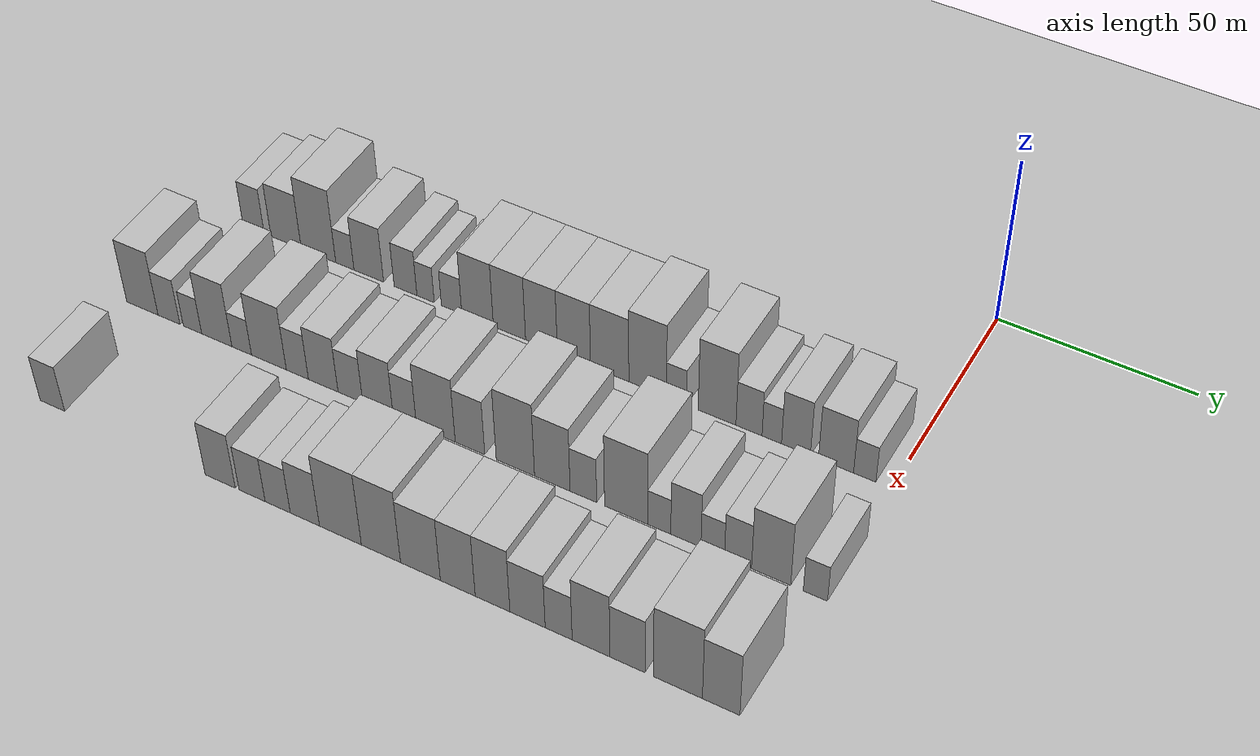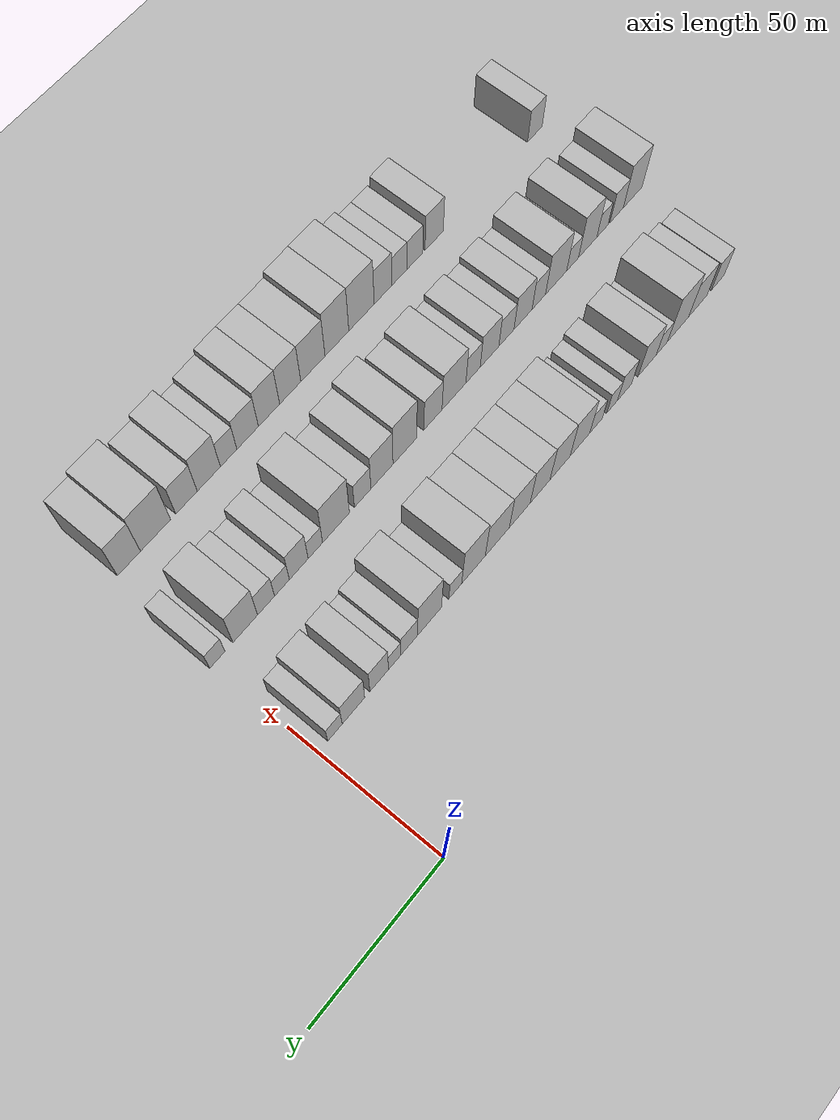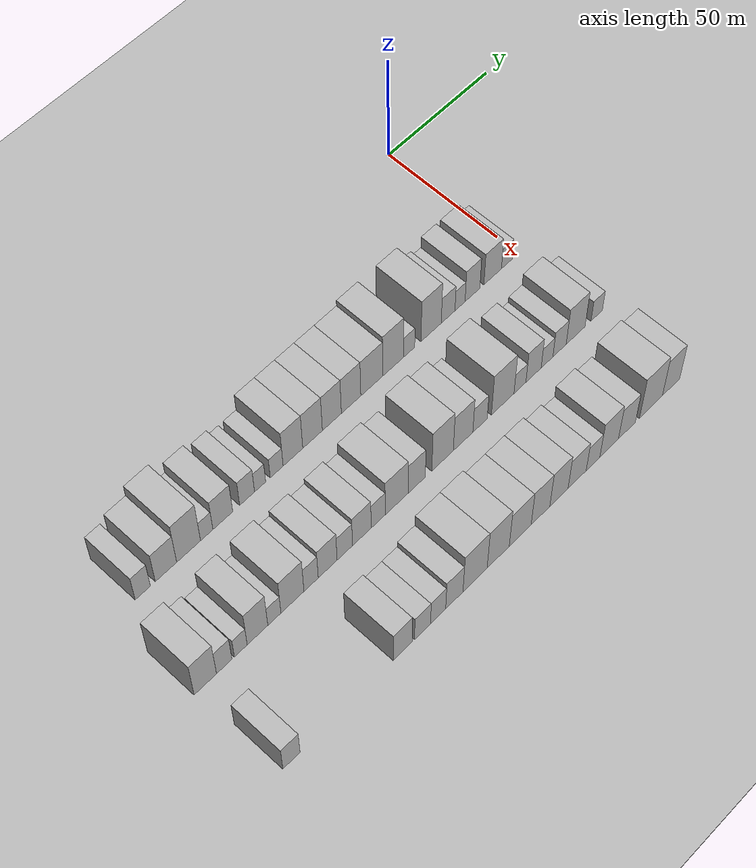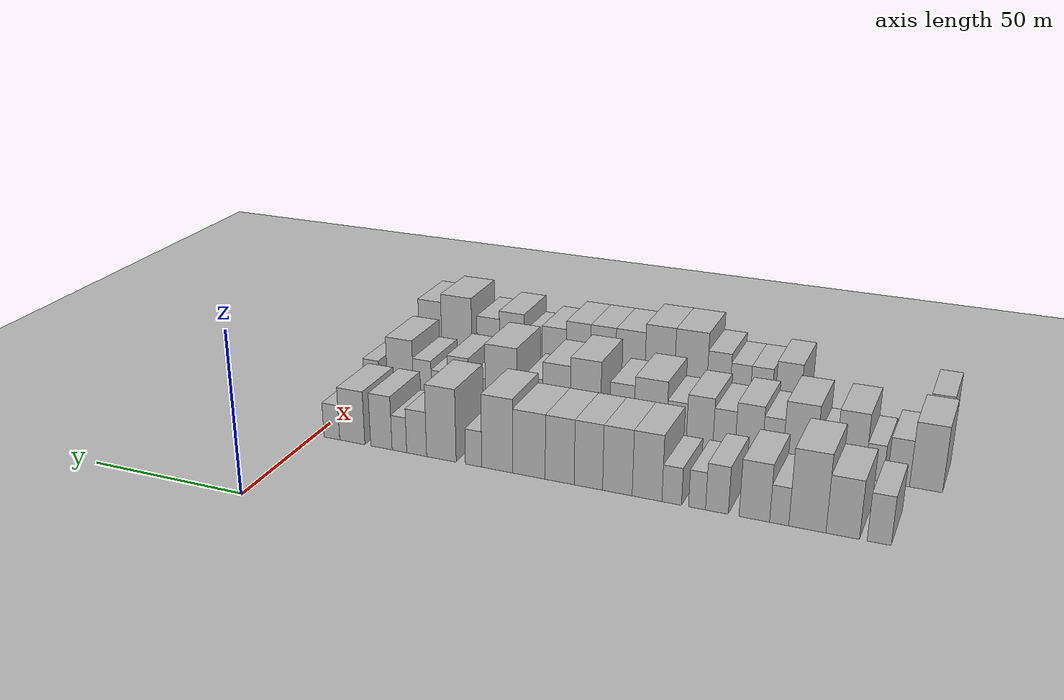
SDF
<sdf version="1.6">
 <world name="default">
  <include><name>ground_plane_1</name><uri>model://HANNAS_ground_plane</uri></include>
  <include>
   <name>ground_plane_2</name>
   <uri>model://HANNAS_ground_plane</uri>
   <pose>100 0 0  0 0 0</pose>
  </include>
  <model name="building_23">
   <static>1</static>
   <pose>50.0000 -171.4032 0 0.000000 0.000000 0.000000</pose>
   <link name="link">
    <pose>0 0 7.50 0 0 0</pose>
    <collision name="collision"><geometry><box><size>20.0000 6.2841 15.0000</size></box></geometry></collision>
    <visual name="visual">
     <cast_shadows>0</cast_shadows>
     <geometry><box><size>20.0000 6.2841 15.0000</size></box></geometry>
     <material>
      <script>
       <uri>model://HANNAS_wall/materials/scripts</uri>
       <uri>model://HANNAS_wall/materials/textures</uri>
       <name>vrc/HANNAS_wall</name>
      </script>
     </material>
    </visual>
   </link>
  </model>
  <model name="building_24">
   <static>1</static>
   <pose>50.0000 -161.8031 0 0.000000 0.000000 0.000000</pose>
   <link name="link">
    <pose>0 0 9.00 0 0 0</pose>
    <collision name="collision"><geometry><box><size>20.0000 8.9161 18.0000</size></box></geometry></collision>
    <visual name="visual">
     <cast_shadows>0</cast_shadows>
     <geometry><box><size>20.0000 8.9161 18.0000</size></box></geometry>
     <material>
      <script>
       <uri>model://HANNAS_wall/materials/scripts</uri>
       <uri>model://HANNAS_wall/materials/textures</uri>
       <name>vrc/HANNAS_wall</name>
      </script>
     </material>
    </visual>
   </link>
  </model>
  <model name="building_25">
   <static>1</static>
   <pose>50.0000 -152.3166 0 0.000000 0.000000 0.000000</pose>
   <link name="link">
    <pose>0 0 12.00 0 0 0</pose>
    <collision name="collision"><geometry><box><size>20.0000 10.0570 24.0000</size></box></geometry></collision>
    <visual name="visual">
     <cast_shadows>0</cast_shadows>
     <geometry><box><size>20.0000 10.0570 24.0000</size></box></geometry>
     <material>
      <script>
       <uri>model://HANNAS_wall/materials/scripts</uri>
       <uri>model://HANNAS_wall/materials/textures</uri>
       <name>vrc/HANNAS_wall</name>
      </script>
     </material>
    </visual>
   </link>
  </model>
  <model name="building_26">
   <static>1</static>
   <pose>50.0000 -144.6645 0 0.000000 0.000000 0.000000</pose>
   <link name="link">
    <pose>0 0 6.00 0 0 0</pose>
    <collision name="collision"><geometry><box><size>20.0000 5.2472 12.0000</size></box></geometry></collision>
    <visual name="visual">
     <cast_shadows>0</cast_shadows>
     <geometry><box><size>20.0000 5.2472 12.0000</size></box></geometry>
     <material>
      <script>
       <uri>model://HANNAS_wall/materials/scripts</uri>
       <uri>model://HANNAS_wall/materials/textures</uri>
       <name>vrc/HANNAS_wall</name>
      </script>
     </material>
    </visual>
   </link>
  </model>
  <model name="building_27">
   <static>1</static>
   <pose>50.0000 -137.7980 0 0.000000 0.000000 0.000000</pose>
   <link name="link">
    <pose>0 0 9.00 0 0 0</pose>
    <collision name="collision"><geometry><box><size>20.0000 8.4859 18.0000</size></box></geometry></collision>
    <visual name="visual">
     <cast_shadows>0</cast_shadows>
     <geometry><box><size>20.0000 8.4859 18.0000</size></box></geometry>
     <material>
      <script>
       <uri>model://HANNAS_wall/materials/scripts</uri>
       <uri>model://HANNAS_wall/materials/textures</uri>
       <name>vrc/HANNAS_wall</name>
      </script>
     </material>
    </visual>
   </link>
  </model>
  <model name="building_28">
   <static>1</static>
   <pose>50.0000 -127.3299 0 0.000000 0.000000 0.000000</pose>
   <link name="link">
    <pose>0 0 7.50 0 0 0</pose>
    <collision name="collision"><geometry><box><size>20.0000 6.4503 15.0000</size></box></geometry></collision>
    <visual name="visual">
     <cast_shadows>0</cast_shadows>
     <geometry><box><size>20.0000 6.4503 15.0000</size></box></geometry>
     <material>
      <script>
       <uri>model://HANNAS_wall/materials/scripts</uri>
       <uri>model://HANNAS_wall/materials/textures</uri>
       <name>vrc/HANNAS_wall</name>
      </script>
     </material>
    </visual>
   </link>
  </model>
  <model name="building_29">
   <static>1</static>
   <pose>50.0000 -121.6723 0 0.000000 0.000000 0.000000</pose>
   <link name="link">
    <pose>0 0 6.00 0 0 0</pose>
    <collision name="collision"><geometry><box><size>20.0000 4.8649 12.0000</size></box></geometry></collision>
    <visual name="visual">
     <cast_shadows>0</cast_shadows>
     <geometry><box><size>20.0000 4.8649 12.0000</size></box></geometry>
     <material>
      <script>
       <uri>model://HANNAS_wall/materials/scripts</uri>
       <uri>model://HANNAS_wall/materials/textures</uri>
       <name>vrc/HANNAS_wall</name>
      </script>
     </material>
    </visual>
   </link>
  </model>
  <model name="building_30">
   <static>1</static>
   <pose>50.0000 -114.3965 0 0.000000 0.000000 0.000000</pose>
   <link name="link">
    <pose>0 0 6.00 0 0 0</pose>
    <collision name="collision"><geometry><box><size>20.0000 5.6867 12.0000</size></box></geometry></collision>
    <visual name="visual">
     <cast_shadows>0</cast_shadows>
     <geometry><box><size>20.0000 5.6867 12.0000</size></box></geometry>
     <material>
      <script>
       <uri>model://HANNAS_wall/materials/scripts</uri>
       <uri>model://HANNAS_wall/materials/textures</uri>
       <name>vrc/HANNAS_wall</name>
      </script>
     </material>
    </visual>
   </link>
  </model>
  <model name="building_31">
   <static>1</static>
   <pose>50.0000 -107.1871 0 0.000000 0.000000 0.000000</pose>
   <link name="link">
    <pose>0 0 10.50 0 0 0</pose>
    <collision name="collision"><geometry><box><size>20.0000 8.7320 21.0000</size></box></geometry></collision>
    <visual name="visual">
     <cast_shadows>0</cast_shadows>
     <geometry><box><size>20.0000 8.7320 21.0000</size></box></geometry>
     <material>
      <script>
       <uri>model://HANNAS_wall/materials/scripts</uri>
       <uri>model://HANNAS_wall/materials/textures</uri>
       <name>vrc/HANNAS_wall</name>
      </script>
     </material>
    </visual>
   </link>
  </model>
  <model name="building_32">
   <static>1</static>
   <pose>50.0000 -98.4116 0 0.000000 0.000000 0.000000</pose>
   <link name="link">
    <pose>0 0 10.50 0 0 0</pose>
    <collision name="collision"><geometry><box><size>20.0000 8.8189 21.0000</size></box></geometry></collision>
    <visual name="visual">
     <cast_shadows>0</cast_shadows>
     <geometry><box><size>20.0000 8.8189 21.0000</size></box></geometry>
     <material>
      <script>
       <uri>model://HANNAS_wall/materials/scripts</uri>
       <uri>model://HANNAS_wall/materials/textures</uri>
       <name>vrc/HANNAS_wall</name>
      </script>
     </material>
    </visual>
   </link>
  </model>
  <model name="building_33">
   <static>1</static>
   <pose>50.0000 -89.6995 0 0.000000 0.000000 0.000000</pose>
   <link name="link">
    <pose>0 0 10.50 0 0 0</pose>
    <collision name="collision"><geometry><box><size>20.0000 8.6054 21.0000</size></box></geometry></collision>
    <visual name="visual">
     <cast_shadows>0</cast_shadows>
     <geometry><box><size>20.0000 8.6054 21.0000</size></box></geometry>
     <material>
      <script>
       <uri>model://HANNAS_wall/materials/scripts</uri>
       <uri>model://HANNAS_wall/materials/textures</uri>
       <name>vrc/HANNAS_wall</name>
      </script>
     </material>
    </visual>
   </link>
  </model>
  <model name="building_34">
   <static>1</static>
   <pose>50.0000 -80.9385 0 0.000000 0.000000 0.000000</pose>
   <link name="link">
    <pose>0 0 10.50 0 0 0</pose>
    <collision name="collision"><geometry><box><size>20.0000 8.9166 21.0000</size></box></geometry></collision>
    <visual name="visual">
     <cast_shadows>0</cast_shadows>
     <geometry><box><size>20.0000 8.9166 21.0000</size></box></geometry>
     <material>
      <script>
       <uri>model://HANNAS_wall/materials/scripts</uri>
       <uri>model://HANNAS_wall/materials/textures</uri>
       <name>vrc/HANNAS_wall</name>
      </script>
     </material>
    </visual>
   </link>
  </model>
  <model name="building_35">
   <static>1</static>
   <pose>50.0000 -71.4100 0 0.000000 0.000000 0.000000</pose>
   <link name="link">
    <pose>0 0 10.50 0 0 0</pose>
    <collision name="collision"><geometry><box><size>20.0000 10.1404 21.0000</size></box></geometry></collision>
    <visual name="visual">
     <cast_shadows>0</cast_shadows>
     <geometry><box><size>20.0000 10.1404 21.0000</size></box></geometry>
     <material>
      <script>
       <uri>model://HANNAS_wall/materials/scripts</uri>
       <uri>model://HANNAS_wall/materials/textures</uri>
       <name>vrc/HANNAS_wall</name>
      </script>
     </material>
    </visual>
   </link>
  </model>
  <model name="building_36">
   <static>1</static>
   <pose>50.0000 -61.4313 0 0.000000 0.000000 0.000000</pose>
   <link name="link">
    <pose>0 0 12.00 0 0 0</pose>
    <collision name="collision"><geometry><box><size>20.0000 9.8170 24.0000</size></box></geometry></collision>
    <visual name="visual">
     <cast_shadows>0</cast_shadows>
     <geometry><box><size>20.0000 9.8170 24.0000</size></box></geometry>
     <material>
      <script>
       <uri>model://HANNAS_wall/materials/scripts</uri>
       <uri>model://HANNAS_wall/materials/textures</uri>
       <name>vrc/HANNAS_wall</name>
      </script>
     </material>
    </visual>
   </link>
  </model>
  <model name="building_37">
   <static>1</static>
   <pose>50.0000 -53.8903 0 0.000000 0.000000 0.000000</pose>
   <link name="link">
    <pose>0 0 6.00 0 0 0</pose>
    <collision name="collision"><geometry><box><size>20.0000 5.2652 12.0000</size></box></geometry></collision>
    <visual name="visual">
     <cast_shadows>0</cast_shadows>
     <geometry><box><size>20.0000 5.2652 12.0000</size></box></geometry>
     <material>
      <script>
       <uri>model://HANNAS_wall/materials/scripts</uri>
       <uri>model://HANNAS_wall/materials/textures</uri>
       <name>vrc/HANNAS_wall</name>
      </script>
     </material>
    </visual>
   </link>
  </model>
  <model name="building_38">
   <static>1</static>
   <pose>50.0000 -43.4119 0 0.000000 0.000000 0.000000</pose>
   <link name="link">
    <pose>0 0 12.00 0 0 0</pose>
    <collision name="collision"><geometry><box><size>20.0000 9.6916 24.0000</size></box></geometry></collision>
    <visual name="visual">
     <cast_shadows>0</cast_shadows>
     <geometry><box><size>20.0000 9.6916 24.0000</size></box></geometry>
     <material>
      <script>
       <uri>model://HANNAS_wall/materials/scripts</uri>
       <uri>model://HANNAS_wall/materials/textures</uri>
       <name>vrc/HANNAS_wall</name>
      </script>
     </material>
    </visual>
   </link>
  </model>
  <model name="building_39">
   <static>1</static>
   <pose>50.0000 -35.2519 0 0.000000 0.000000 0.000000</pose>
   <link name="link">
    <pose>0 0 7.50 0 0 0</pose>
    <collision name="collision"><geometry><box><size>20.0000 6.6284 15.0000</size></box></geometry></collision>
    <visual name="visual">
     <cast_shadows>0</cast_shadows>
     <geometry><box><size>20.0000 6.6284 15.0000</size></box></geometry>
     <material>
      <script>
       <uri>model://HANNAS_wall/materials/scripts</uri>
       <uri>model://HANNAS_wall/materials/textures</uri>
       <name>vrc/HANNAS_wall</name>
      </script>
     </material>
    </visual>
   </link>
  </model>
  <model name="building_40">
   <static>1</static>
   <pose>50.0000 -29.4817 0 0.000000 0.000000 0.000000</pose>
   <link name="link">
    <pose>0 0 6.00 0 0 0</pose>
    <collision name="collision"><geometry><box><size>20.0000 4.9120 12.0000</size></box></geometry></collision>
    <visual name="visual">
     <cast_shadows>0</cast_shadows>
     <geometry><box><size>20.0000 4.9120 12.0000</size></box></geometry>
     <material>
      <script>
       <uri>model://HANNAS_wall/materials/scripts</uri>
       <uri>model://HANNAS_wall/materials/textures</uri>
       <name>vrc/HANNAS_wall</name>
      </script>
     </material>
    </visual>
   </link>
  </model>
  <model name="building_41">
   <static>1</static>
   <pose>50.0000 -23.4032 0 0.000000 0.000000 0.000000</pose>
   <link name="link">
    <pose>0 0 9.00 0 0 0</pose>
    <collision name="collision"><geometry><box><size>20.0000 7.2448 18.0000</size></box></geometry></collision>
    <visual name="visual">
     <cast_shadows>0</cast_shadows>
     <geometry><box><size>20.0000 7.2448 18.0000</size></box></geometry>
     <material>
      <script>
       <uri>model://HANNAS_wall/materials/scripts</uri>
       <uri>model://HANNAS_wall/materials/textures</uri>
       <name>vrc/HANNAS_wall</name>
      </script>
     </material>
    </visual>
   </link>
  </model>
  <model name="building_42">
   <static>1</static>
   <pose>50.0000 -13.4413 0 0.000000 0.000000 0.000000</pose>
   <link name="link">
    <pose>0 0 9.00 0 0 0</pose>
    <collision name="collision"><geometry><box><size>20.0000 8.6791 18.0000</size></box></geometry></collision>
    <visual name="visual">
     <cast_shadows>0</cast_shadows>
     <geometry><box><size>20.0000 8.6791 18.0000</size></box></geometry>
     <material>
      <script>
       <uri>model://HANNAS_wall/materials/scripts</uri>
       <uri>model://HANNAS_wall/materials/textures</uri>
       <name>vrc/HANNAS_wall</name>
      </script>
     </material>
    </visual>
   </link>
  </model>
  <model name="building_43">
   <static>1</static>
   <pose>50.0000 -6.3569 0 0.000000 0.000000 0.000000</pose>
   <link name="link">
    <pose>0 0 6.00 0 0 0</pose>
    <collision name="collision"><geometry><box><size>20.0000 5.4895 12.0000</size></box></geometry></collision>
    <visual name="visual">
     <cast_shadows>0</cast_shadows>
     <geometry><box><size>20.0000 5.4895 12.0000</size></box></geometry>
     <material>
      <script>
       <uri>model://HANNAS_wall/materials/scripts</uri>
       <uri>model://HANNAS_wall/materials/textures</uri>
       <name>vrc/HANNAS_wall</name>
      </script>
     </material>
    </visual>
   </link>
  </model>
  <model name="building_100">
   <static>1</static>
   <pose>85.0000 -178.9146 0 0.000000 0.000000 0.000000</pose>
   <link name="link">
    <pose>0 0 10.50 0 0 0</pose>
    <collision name="collision"><geometry><box><size>20.0000 9.1731 21.0000</size></box></geometry></collision>
    <visual name="visual">
     <cast_shadows>0</cast_shadows>
     <geometry><box><size>20.0000 9.1731 21.0000</size></box></geometry>
     <material>
      <script>
       <uri>model://HANNAS_wall/materials/scripts</uri>
       <uri>model://HANNAS_wall/materials/textures</uri>
       <name>vrc/HANNAS_wall</name>
      </script>
     </material>
    </visual>
   </link>
  </model>
  <model name="building_101">
   <static>1</static>
   <pose>85.0000 -171.1550 0 0.000000 0.000000 0.000000</pose>
   <link name="link">
    <pose>0 0 7.50 0 0 0</pose>
    <collision name="collision"><geometry><box><size>20.0000 6.3460 15.0000</size></box></geometry></collision>
    <visual name="visual">
     <cast_shadows>0</cast_shadows>
     <geometry><box><size>20.0000 6.3460 15.0000</size></box></geometry>
     <material>
      <script>
       <uri>model://HANNAS_wall/materials/scripts</uri>
       <uri>model://HANNAS_wall/materials/textures</uri>
       <name>vrc/HANNAS_wall</name>
      </script>
     </material>
    </visual>
   </link>
  </model>
  <model name="building_102">
   <static>1</static>
   <pose>85.0000 -164.3270 0 0.000000 0.000000 0.000000</pose>
   <link name="link">
    <pose>0 0 6.00 0 0 0</pose>
    <collision name="collision"><geometry><box><size>20.0000 5.3101 12.0000</size></box></geometry></collision>
    <visual name="visual">
     <cast_shadows>0</cast_shadows>
     <geometry><box><size>20.0000 5.3101 12.0000</size></box></geometry>
     <material>
      <script>
       <uri>model://HANNAS_wall/materials/scripts</uri>
       <uri>model://HANNAS_wall/materials/textures</uri>
       <name>vrc/HANNAS_wall</name>
      </script>
     </material>
    </visual>
   </link>
  </model>
  <model name="building_103">
   <static>1</static>
   <pose>85.0000 -157.3492 0 0.000000 0.000000 0.000000</pose>
   <link name="link">
    <pose>0 0 10.50 0 0 0</pose>
    <collision name="collision"><geometry><box><size>20.0000 8.6456 21.0000</size></box></geometry></collision>
    <visual name="visual">
     <cast_shadows>0</cast_shadows>
     <geometry><box><size>20.0000 8.6456 21.0000</size></box></geometry>
     <material>
      <script>
       <uri>model://HANNAS_wall/materials/scripts</uri>
       <uri>model://HANNAS_wall/materials/textures</uri>
       <name>vrc/HANNAS_wall</name>
      </script>
     </material>
    </visual>
   </link>
  </model>
  <model name="building_104">
   <static>1</static>
   <pose>85.0000 -150.2506 0 0.000000 0.000000 0.000000</pose>
   <link name="link">
    <pose>0 0 6.00 0 0 0</pose>
    <collision name="collision"><geometry><box><size>20.0000 5.5515 12.0000</size></box></geometry></collision>
    <visual name="visual">
     <cast_shadows>0</cast_shadows>
     <geometry><box><size>20.0000 5.5515 12.0000</size></box></geometry>
     <material>
      <script>
       <uri>model://HANNAS_wall/materials/scripts</uri>
       <uri>model://HANNAS_wall/materials/textures</uri>
       <name>vrc/HANNAS_wall</name>
      </script>
     </material>
    </visual>
   </link>
  </model>
  <model name="building_105">
   <static>1</static>
   <pose>85.0000 -142.5724 0 0.000000 0.000000 0.000000</pose>
   <link name="link">
    <pose>0 0 10.50 0 0 0</pose>
    <collision name="collision"><geometry><box><size>20.0000 9.8049 21.0000</size></box></geometry></collision>
    <visual name="visual">
     <cast_shadows>0</cast_shadows>
     <geometry><box><size>20.0000 9.8049 21.0000</size></box></geometry>
     <material>
      <script>
       <uri>model://HANNAS_wall/materials/scripts</uri>
       <uri>model://HANNAS_wall/materials/textures</uri>
       <name>vrc/HANNAS_wall</name>
      </script>
     </material>
    </visual>
   </link>
  </model>
  <model name="building_106">
   <static>1</static>
   <pose>85.0000 -134.5894 0 0.000000 0.000000 0.000000</pose>
   <link name="link">
    <pose>0 0 7.50 0 0 0</pose>
    <collision name="collision"><geometry><box><size>20.0000 6.1611 15.0000</size></box></geometry></collision>
    <visual name="visual">
     <cast_shadows>0</cast_shadows>
     <geometry><box><size>20.0000 6.1611 15.0000</size></box></geometry>
     <material>
      <script>
       <uri>model://HANNAS_wall/materials/scripts</uri>
       <uri>model://HANNAS_wall/materials/textures</uri>
       <name>vrc/HANNAS_wall</name>
      </script>
     </material>
    </visual>
   </link>
  </model>
  <model name="building_107">
   <static>1</static>
   <pose>85.0000 -127.4179 0 0.000000 0.000000 0.000000</pose>
   <link name="link">
    <pose>0 0 9.00 0 0 0</pose>
    <collision name="collision"><geometry><box><size>20.0000 8.1820 18.0000</size></box></geometry></collision>
    <visual name="visual">
     <cast_shadows>0</cast_shadows>
     <geometry><box><size>20.0000 8.1820 18.0000</size></box></geometry>
     <material>
      <script>
       <uri>model://HANNAS_wall/materials/scripts</uri>
       <uri>model://HANNAS_wall/materials/textures</uri>
       <name>vrc/HANNAS_wall</name>
      </script>
     </material>
    </visual>
   </link>
  </model>
  <model name="building_108">
   <static>1</static>
   <pose>85.0000 -119.9391 0 0.000000 0.000000 0.000000</pose>
   <link name="link">
    <pose>0 0 7.50 0 0 0</pose>
    <collision name="collision"><geometry><box><size>20.0000 6.7755 15.0000</size></box></geometry></collision>
    <visual name="visual">
     <cast_shadows>0</cast_shadows>
     <geometry><box><size>20.0000 6.7755 15.0000</size></box></geometry>
     <material>
      <script>
       <uri>model://HANNAS_wall/materials/scripts</uri>
       <uri>model://HANNAS_wall/materials/textures</uri>
       <name>vrc/HANNAS_wall</name>
      </script>
     </material>
    </visual>
   </link>
  </model>
  <model name="building_109">
   <static>1</static>
   <pose>85.0000 -112.4272 0 0.000000 0.000000 0.000000</pose>
   <link name="link">
    <pose>0 0 9.00 0 0 0</pose>
    <collision name="collision"><geometry><box><size>20.0000 8.2484 18.0000</size></box></geometry></collision>
    <visual name="visual">
     <cast_shadows>0</cast_shadows>
     <geometry><box><size>20.0000 8.2484 18.0000</size></box></geometry>
     <material>
      <script>
       <uri>model://HANNAS_wall/materials/scripts</uri>
       <uri>model://HANNAS_wall/materials/textures</uri>
       <name>vrc/HANNAS_wall</name>
      </script>
     </material>
    </visual>
   </link>
  </model>
  <model name="building_110">
   <static>1</static>
   <pose>85.0000 -105.1720 0 0.000000 0.000000 0.000000</pose>
   <link name="link">
    <pose>0 0 7.50 0 0 0</pose>
    <collision name="collision"><geometry><box><size>20.0000 6.2620 15.0000</size></box></geometry></collision>
    <visual name="visual">
     <cast_shadows>0</cast_shadows>
     <geometry><box><size>20.0000 6.2620 15.0000</size></box></geometry>
     <material>
      <script>
       <uri>model://HANNAS_wall/materials/scripts</uri>
       <uri>model://HANNAS_wall/materials/textures</uri>
       <name>vrc/HANNAS_wall</name>
      </script>
     </material>
    </visual>
   </link>
  </model>
  <model name="building_111">
   <static>1</static>
   <pose>85.0000 -96.8709 0 0.000000 0.000000 0.000000</pose>
   <link name="link">
    <pose>0 0 10.50 0 0 0</pose>
    <collision name="collision"><geometry><box><size>20.0000 10.3402 21.0000</size></box></geometry></collision>
    <visual name="visual">
     <cast_shadows>0</cast_shadows>
     <geometry><box><size>20.0000 10.3402 21.0000</size></box></geometry>
     <material>
      <script>
       <uri>model://HANNAS_wall/materials/scripts</uri>
       <uri>model://HANNAS_wall/materials/textures</uri>
       <name>vrc/HANNAS_wall</name>
      </script>
     </material>
    </visual>
   </link>
  </model>
  <model name="building_112">
   <static>1</static>
   <pose>85.0000 -87.8020 0 0.000000 0.000000 0.000000</pose>
   <link name="link">
    <pose>0 0 9.00 0 0 0</pose>
    <collision name="collision"><geometry><box><size>20.0000 7.7975 18.0000</size></box></geometry></collision>
    <visual name="visual">
     <cast_shadows>0</cast_shadows>
     <geometry><box><size>20.0000 7.7975 18.0000</size></box></geometry>
     <material>
      <script>
       <uri>model://HANNAS_wall/materials/scripts</uri>
       <uri>model://HANNAS_wall/materials/textures</uri>
       <name>vrc/HANNAS_wall</name>
      </script>
     </material>
    </visual>
   </link>
  </model>
  <model name="building_113">
   <static>1</static>
   <pose>85.0000 -75.9290 0 0.000000 0.000000 0.000000</pose>
   <link name="link">
    <pose>0 0 12.00 0 0 0</pose>
    <collision name="collision"><geometry><box><size>20.0000 9.9487 24.0000</size></box></geometry></collision>
    <visual name="visual">
     <cast_shadows>0</cast_shadows>
     <geometry><box><size>20.0000 9.9487 24.0000</size></box></geometry>
     <material>
      <script>
       <uri>model://HANNAS_wall/materials/scripts</uri>
       <uri>model://HANNAS_wall/materials/textures</uri>
       <name>vrc/HANNAS_wall</name>
      </script>
     </material>
    </visual>
   </link>
  </model>
  <model name="building_114">
   <static>1</static>
   <pose>85.0000 -66.3865 0 0.000000 0.000000 0.000000</pose>
   <link name="link">
    <pose>0 0 10.50 0 0 0</pose>
    <collision name="collision"><geometry><box><size>20.0000 9.1364 21.0000</size></box></geometry></collision>
    <visual name="visual">
     <cast_shadows>0</cast_shadows>
     <geometry><box><size>20.0000 9.1364 21.0000</size></box></geometry>
     <material>
      <script>
       <uri>model://HANNAS_wall/materials/scripts</uri>
       <uri>model://HANNAS_wall/materials/textures</uri>
       <name>vrc/HANNAS_wall</name>
      </script>
     </material>
    </visual>
   </link>
  </model>
  <model name="building_115">
   <static>1</static>
   <pose>85.0000 -58.4417 0 0.000000 0.000000 0.000000</pose>
   <link name="link">
    <pose>0 0 7.50 0 0 0</pose>
    <collision name="collision"><geometry><box><size>20.0000 6.7532 15.0000</size></box></geometry></collision>
    <visual name="visual">
     <cast_shadows>0</cast_shadows>
     <geometry><box><size>20.0000 6.7532 15.0000</size></box></geometry>
     <material>
      <script>
       <uri>model://HANNAS_wall/materials/scripts</uri>
       <uri>model://HANNAS_wall/materials/textures</uri>
       <name>vrc/HANNAS_wall</name>
      </script>
     </material>
    </visual>
   </link>
  </model>
  <model name="building_116">
   <static>1</static>
   <pose>85.0000 -47.6607 0 0.000000 0.000000 0.000000</pose>
   <link name="link">
    <pose>0 0 12.00 0 0 0</pose>
    <collision name="collision"><geometry><box><size>20.0000 10.8088 24.0000</size></box></geometry></collision>
    <visual name="visual">
     <cast_shadows>0</cast_shadows>
     <geometry><box><size>20.0000 10.8088 24.0000</size></box></geometry>
     <material>
      <script>
       <uri>model://HANNAS_wall/materials/scripts</uri>
       <uri>model://HANNAS_wall/materials/textures</uri>
       <name>vrc/HANNAS_wall</name>
      </script>
     </material>
    </visual>
   </link>
  </model>
  <model name="building_117">
   <static>1</static>
   <pose>85.0000 -39.3901 0 0.000000 0.000000 0.000000</pose>
   <link name="link">
    <pose>0 0 6.00 0 0 0</pose>
    <collision name="collision"><geometry><box><size>20.0000 5.7324 12.0000</size></box></geometry></collision>
    <visual name="visual">
     <cast_shadows>0</cast_shadows>
     <geometry><box><size>20.0000 5.7324 12.0000</size></box></geometry>
     <material>
      <script>
       <uri>model://HANNAS_wall/materials/scripts</uri>
       <uri>model://HANNAS_wall/materials/textures</uri>
       <name>vrc/HANNAS_wall</name>
      </script>
     </material>
    </visual>
   </link>
  </model>
  <model name="building_118">
   <static>1</static>
   <pose>85.0000 -32.8099 0 0.000000 0.000000 0.000000</pose>
   <link name="link">
    <pose>0 0 9.00 0 0 0</pose>
    <collision name="collision"><geometry><box><size>20.0000 7.4280 18.0000</size></box></geometry></collision>
    <visual name="visual">
     <cast_shadows>0</cast_shadows>
     <geometry><box><size>20.0000 7.4280 18.0000</size></box></geometry>
     <material>
      <script>
       <uri>model://HANNAS_wall/materials/scripts</uri>
       <uri>model://HANNAS_wall/materials/textures</uri>
       <name>vrc/HANNAS_wall</name>
      </script>
     </material>
    </visual>
   </link>
  </model>
  <model name="building_119">
   <static>1</static>
   <pose>85.0000 -26.2158 0 0.000000 0.000000 0.000000</pose>
   <link name="link">
    <pose>0 0 6.00 0 0 0</pose>
    <collision name="collision"><geometry><box><size>20.0000 5.7602 12.0000</size></box></geometry></collision>
    <visual name="visual">
     <cast_shadows>0</cast_shadows>
     <geometry><box><size>20.0000 5.7602 12.0000</size></box></geometry>
     <material>
      <script>
       <uri>model://HANNAS_wall/materials/scripts</uri>
       <uri>model://HANNAS_wall/materials/textures</uri>
       <name>vrc/HANNAS_wall</name>
      </script>
     </material>
    </visual>
   </link>
  </model>
  <model name="building_120">
   <static>1</static>
   <pose>85.0000 -20.0678 0 0.000000 0.000000 0.000000</pose>
   <link name="link">
    <pose>0 0 7.50 0 0 0</pose>
    <collision name="collision"><geometry><box><size>20.0000 6.5358 15.0000</size></box></geometry></collision>
    <visual name="visual">
     <cast_shadows>0</cast_shadows>
     <geometry><box><size>20.0000 6.5358 15.0000</size></box></geometry>
     <material>
      <script>
       <uri>model://HANNAS_wall/materials/scripts</uri>
       <uri>model://HANNAS_wall/materials/textures</uri>
       <name>vrc/HANNAS_wall</name>
      </script>
     </material>
    </visual>
   </link>
  </model>
  <model name="building_121">
   <static>1</static>
   <pose>85.0000 -12.0821 0 0.000000 0.000000 0.000000</pose>
   <link name="link">
    <pose>0 0 10.50 0 0 0</pose>
    <collision name="collision"><geometry><box><size>20.0000 9.4357 21.0000</size></box></geometry></collision>
    <visual name="visual">
     <cast_shadows>0</cast_shadows>
     <geometry><box><size>20.0000 9.4357 21.0000</size></box></geometry>
     <material>
      <script>
       <uri>model://HANNAS_wall/materials/scripts</uri>
       <uri>model://HANNAS_wall/materials/textures</uri>
       <name>vrc/HANNAS_wall</name>
      </script>
     </material>
    </visual>
   </link>
  </model>
  <model name="building_122">
   <static>1</static>
   <pose>85.0000 -1.4962 0 0.000000 0.000000 0.000000</pose>
   <link name="link">
    <pose>0 0 6.00 0 0 0</pose>
    <collision name="collision"><geometry><box><size>20.0000 5.7361 12.0000</size></box></geometry></collision>
    <visual name="visual">
     <cast_shadows>0</cast_shadows>
     <geometry><box><size>20.0000 5.7361 12.0000</size></box></geometry>
     <material>
      <script>
       <uri>model://HANNAS_wall/materials/scripts</uri>
       <uri>model://HANNAS_wall/materials/textures</uri>
       <name>vrc/HANNAS_wall</name>
      </script>
     </material>
    </visual>
   </link>
  </model>
  <model name="building_184">
   <static>1</static>
   <pose>120.0000 -178.1736 0 0.000000 0.000000 0.000000</pose>
   <link name="link">
    <pose>0 0 7.50 0 0 0</pose>
    <collision name="collision"><geometry><box><size>20.0000 7.0228 15.0000</size></box></geometry></collision>
    <visual name="visual">
     <cast_shadows>0</cast_shadows>
     <geometry><box><size>20.0000 7.0228 15.0000</size></box></geometry>
     <material>
      <script>
       <uri>model://HANNAS_wall/materials/scripts</uri>
       <uri>model://HANNAS_wall/materials/textures</uri>
       <name>vrc/HANNAS_wall</name>
      </script>
     </material>
    </visual>
   </link>
  </model>
  <model name="building_185">
   <static>1</static>
   <pose>120.0000 -131.3616 0 0.000000 0.000000 0.000000</pose>
   <link name="link">
    <pose>0 0 9.00 0 0 0</pose>
    <collision name="collision"><geometry><box><size>20.0000 8.2004 18.0000</size></box></geometry></collision>
    <visual name="visual">
     <cast_shadows>0</cast_shadows>
     <geometry><box><size>20.0000 8.2004 18.0000</size></box></geometry>
     <material>
      <script>
       <uri>model://HANNAS_wall/materials/scripts</uri>
       <uri>model://HANNAS_wall/materials/textures</uri>
       <name>vrc/HANNAS_wall</name>
      </script>
     </material>
    </visual>
   </link>
  </model>
  <model name="building_186">
   <static>1</static>
   <pose>120.0000 -122.7582 0 0.000000 0.000000 0.000000</pose>
   <link name="link">
    <pose>0 0 7.50 0 0 0</pose>
    <collision name="collision"><geometry><box><size>20.0000 7.0066 15.0000</size></box></geometry></collision>
    <visual name="visual">
     <cast_shadows>0</cast_shadows>
     <geometry><box><size>20.0000 7.0066 15.0000</size></box></geometry>
     <material>
      <script>
       <uri>model://HANNAS_wall/materials/scripts</uri>
       <uri>model://HANNAS_wall/materials/textures</uri>
       <name>vrc/HANNAS_wall</name>
      </script>
     </material>
    </visual>
   </link>
  </model>
  <model name="building_187">
   <static>1</static>
   <pose>120.0000 -115.9139 0 0.000000 0.000000 0.000000</pose>
   <link name="link">
    <pose>0 0 7.50 0 0 0</pose>
    <collision name="collision"><geometry><box><size>20.0000 6.6819 15.0000</size></box></geometry></collision>
    <visual name="visual">
     <cast_shadows>0</cast_shadows>
     <geometry><box><size>20.0000 6.6819 15.0000</size></box></geometry>
     <material>
      <script>
       <uri>model://HANNAS_wall/materials/scripts</uri>
       <uri>model://HANNAS_wall/materials/textures</uri>
       <name>vrc/HANNAS_wall</name>
      </script>
     </material>
    </visual>
   </link>
  </model>
  <model name="building_188">
   <static>1</static>
   <pose>120.0000 -108.7235 0 0.000000 0.000000 0.000000</pose>
   <link name="link">
    <pose>0 0 9.00 0 0 0</pose>
    <collision name="collision"><geometry><box><size>20.0000 7.6989 18.0000</size></box></geometry></collision>
    <visual name="visual">
     <cast_shadows>0</cast_shadows>
     <geometry><box><size>20.0000 7.6989 18.0000</size></box></geometry>
     <material>
      <script>
       <uri>model://HANNAS_wall/materials/scripts</uri>
       <uri>model://HANNAS_wall/materials/textures</uri>
       <name>vrc/HANNAS_wall</name>
      </script>
     </material>
    </visual>
   </link>
  </model>
  <model name="building_189">
   <static>1</static>
   <pose>120.0000 -99.4186 0 0.000000 0.000000 0.000000</pose>
   <link name="link">
    <pose>0 0 12.00 0 0 0</pose>
    <collision name="collision"><geometry><box><size>20.0000 10.9110 24.0000</size></box></geometry></collision>
    <visual name="visual">
     <cast_shadows>0</cast_shadows>
     <geometry><box><size>20.0000 10.9110 24.0000</size></box></geometry>
     <material>
      <script>
       <uri>model://HANNAS_wall/materials/scripts</uri>
       <uri>model://HANNAS_wall/materials/textures</uri>
       <name>vrc/HANNAS_wall</name>
      </script>
     </material>
    </visual>
   </link>
  </model>
  <model name="building_190">
   <static>1</static>
   <pose>120.0000 -88.9204 0 0.000000 0.000000 0.000000</pose>
   <link name="link">
    <pose>0 0 12.00 0 0 0</pose>
    <collision name="collision"><geometry><box><size>20.0000 10.0854 24.0000</size></box></geometry></collision>
    <visual name="visual">
     <cast_shadows>0</cast_shadows>
     <geometry><box><size>20.0000 10.0854 24.0000</size></box></geometry>
     <material>
      <script>
       <uri>model://HANNAS_wall/materials/scripts</uri>
       <uri>model://HANNAS_wall/materials/textures</uri>
       <name>vrc/HANNAS_wall</name>
      </script>
     </material>
    </visual>
   </link>
  </model>
  <model name="building_191">
   <static>1</static>
   <pose>120.0000 -78.8208 0 0.000000 0.000000 0.000000</pose>
   <link name="link">
    <pose>0 0 10.50 0 0 0</pose>
    <collision name="collision"><geometry><box><size>20.0000 10.1137 21.0000</size></box></geometry></collision>
    <visual name="visual">
     <cast_shadows>0</cast_shadows>
     <geometry><box><size>20.0000 10.1137 21.0000</size></box></geometry>
     <material>
      <script>
       <uri>model://HANNAS_wall/materials/scripts</uri>
       <uri>model://HANNAS_wall/materials/textures</uri>
       <name>vrc/HANNAS_wall</name>
      </script>
     </material>
    </visual>
   </link>
  </model>
  <model name="building_192">
   <static>1</static>
   <pose>120.0000 -69.3869 0 0.000000 0.000000 0.000000</pose>
   <link name="link">
    <pose>0 0 10.50 0 0 0</pose>
    <collision name="collision"><geometry><box><size>20.0000 8.7540 21.0000</size></box></geometry></collision>
    <visual name="visual">
     <cast_shadows>0</cast_shadows>
     <geometry><box><size>20.0000 8.7540 21.0000</size></box></geometry>
     <material>
      <script>
       <uri>model://HANNAS_wall/materials/scripts</uri>
       <uri>model://HANNAS_wall/materials/textures</uri>
       <name>vrc/HANNAS_wall</name>
      </script>
     </material>
    </visual>
   </link>
  </model>
  <model name="building_193">
   <static>1</static>
   <pose>120.0000 -60.7007 0 0.000000 0.000000 0.000000</pose>
   <link name="link">
    <pose>0 0 10.50 0 0 0</pose>
    <collision name="collision"><geometry><box><size>20.0000 8.6185 21.0000</size></box></geometry></collision>
    <visual name="visual">
     <cast_shadows>0</cast_shadows>
     <geometry><box><size>20.0000 8.6185 21.0000</size></box></geometry>
     <material>
      <script>
       <uri>model://HANNAS_wall/materials/scripts</uri>
       <uri>model://HANNAS_wall/materials/textures</uri>
       <name>vrc/HANNAS_wall</name>
      </script>
     </material>
    </visual>
   </link>
  </model>
  <model name="building_194">
   <static>1</static>
   <pose>120.0000 -52.0623 0 0.000000 0.000000 0.000000</pose>
   <link name="link">
    <pose>0 0 9.00 0 0 0</pose>
    <collision name="collision"><geometry><box><size>20.0000 8.6582 18.0000</size></box></geometry></collision>
    <visual name="visual">
     <cast_shadows>0</cast_shadows>
     <geometry><box><size>20.0000 8.6582 18.0000</size></box></geometry>
     <material>
      <script>
       <uri>model://HANNAS_wall/materials/scripts</uri>
       <uri>model://HANNAS_wall/materials/textures</uri>
       <name>vrc/HANNAS_wall</name>
      </script>
     </material>
    </visual>
   </link>
  </model>
  <model name="building_195">
   <static>1</static>
   <pose>120.0000 -44.4584 0 0.000000 0.000000 0.000000</pose>
   <link name="link">
    <pose>0 0 7.50 0 0 0</pose>
    <collision name="collision"><geometry><box><size>20.0000 6.5497 15.0000</size></box></geometry></collision>
    <visual name="visual">
     <cast_shadows>0</cast_shadows>
     <geometry><box><size>20.0000 6.5497 15.0000</size></box></geometry>
     <material>
      <script>
       <uri>model://HANNAS_wall/materials/scripts</uri>
       <uri>model://HANNAS_wall/materials/textures</uri>
       <name>vrc/HANNAS_wall</name>
      </script>
     </material>
    </visual>
   </link>
  </model>
  <model name="building_196">
   <static>1</static>
   <pose>120.0000 -36.6353 0 0.000000 0.000000 0.000000</pose>
   <link name="link">
    <pose>0 0 10.50 0 0 0</pose>
    <collision name="collision"><geometry><box><size>20.0000 9.0965 21.0000</size></box></geometry></collision>
    <visual name="visual">
     <cast_shadows>0</cast_shadows>
     <geometry><box><size>20.0000 9.0965 21.0000</size></box></geometry>
     <material>
      <script>
       <uri>model://HANNAS_wall/materials/scripts</uri>
       <uri>model://HANNAS_wall/materials/textures</uri>
       <name>vrc/HANNAS_wall</name>
      </script>
     </material>
    </visual>
   </link>
  </model>
  <model name="building_197">
   <static>1</static>
   <pose>120.0000 -27.9145 0 0.000000 0.000000 0.000000</pose>
   <link name="link">
    <pose>0 0 9.00 0 0 0</pose>
    <collision name="collision"><geometry><box><size>20.0000 8.3451 18.0000</size></box></geometry></collision>
    <visual name="visual">
     <cast_shadows>0</cast_shadows>
     <geometry><box><size>20.0000 8.3451 18.0000</size></box></geometry>
     <material>
      <script>
       <uri>model://HANNAS_wall/materials/scripts</uri>
       <uri>model://HANNAS_wall/materials/textures</uri>
       <name>vrc/HANNAS_wall</name>
      </script>
     </material>
    </visual>
   </link>
  </model>
  <model name="building_198">
   <static>1</static>
   <pose>120.0000 -16.0137 0 0.000000 0.000000 0.000000</pose>
   <link name="link">
    <pose>0 0 12.00 0 0 0</pose>
    <collision name="collision"><geometry><box><size>20.0000 11.4566 24.0000</size></box></geometry></collision>
    <visual name="visual">
     <cast_shadows>0</cast_shadows>
     <geometry><box><size>20.0000 11.4566 24.0000</size></box></geometry>
     <material>
      <script>
       <uri>model://HANNAS_wall/materials/scripts</uri>
       <uri>model://HANNAS_wall/materials/textures</uri>
       <name>vrc/HANNAS_wall</name>
      </script>
     </material>
    </visual>
   </link>
  </model>
  <model name="building_199">
   <static>1</static>
   <pose>120.0000 -5.9427 0 0.000000 0.000000 0.000000</pose>
   <link name="link">
    <pose>0 0 10.50 0 0 0</pose>
    <collision name="collision"><geometry><box><size>20.0000 8.6854 21.0000</size></box></geometry></collision>
    <visual name="visual">
     <cast_shadows>0</cast_shadows>
     <geometry><box><size>20.0000 8.6854 21.0000</size></box></geometry>
     <material>
      <script>
       <uri>model://HANNAS_wall/materials/scripts</uri>
       <uri>model://HANNAS_wall/materials/textures</uri>
       <name>vrc/HANNAS_wall</name>
      </script>
     </material>
    </visual>
   </link>
  </model>
 </world>
</sdf>
